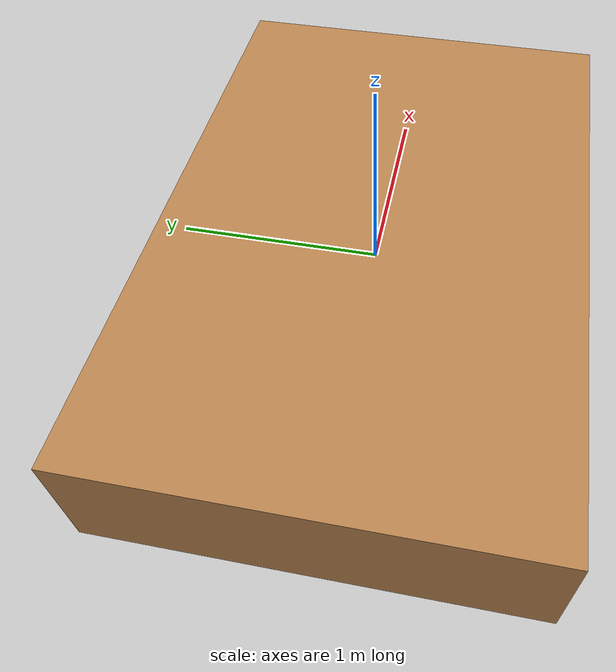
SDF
<?xml version="1.0" ?>
<sdf version="1.6">
    <model name="terrain-box">
        <static>true</static>
        <pose>0 0 0 0 0 0</pose>
        <link name="box">
            <collision name="box_collision">
                <pose frame="">0 0 0 0 0 0</pose>
                <geometry>
                    <box>
                        <size>3 2 0.60</size>
                    </box>
                </geometry>
                <surface>
                    <contact>
                        <collide_bitmask>65535</collide_bitmask>
                        <ode/>
                    </contact>
                    <friction>
                        <ode>
                        <mu>2</mu>
                        <mu2>2</mu2>
                        </ode>
                        <torsional>
                        <ode/>
                        </torsional>
                    </friction>
                    <bounce/>
                </surface>
            </collision>
            <visual name="box_visual">
                <pose frame="">0 0 0 0 0 0</pose>
                <geometry>
                    <box>
                        <size>3 2 0.60</size>
                    </box>
                </geometry>
                <material>
                    <script>
                        <name>Gazebo/Wood</name>
                        <uri>file://media/materials/scripts/gazebo.material</uri>
                    </script>
                </material>
            </visual>
        </link>
    </model>
</sdf>
